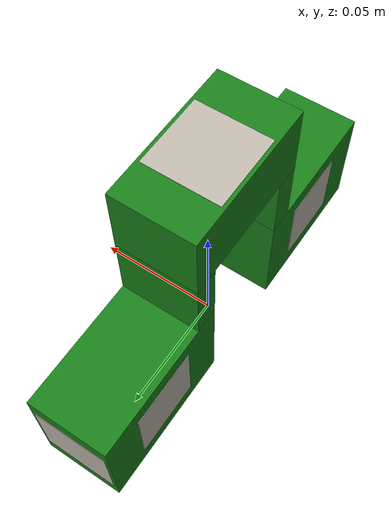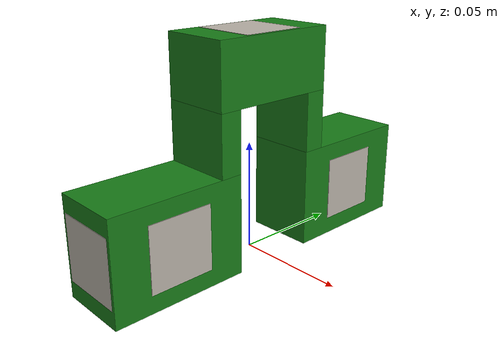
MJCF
<mujoco model="peg_v1_4">
  <compiler angle="radian" autolimits="true" inertiafromgeom="true" meshdir="../board_1" texturedir="tags" />
  <default>
    <default class="peg_v1_4">
      <default class="vis">
        <geom contype="0" conaffinity="0" group="2" density="0" material="peg_v1_4_mat" />
      </default>
      <default class="col">
        <geom contype="1" conaffinity="1" group="3" priority="0" friction="0.3 0.02 0.001" solref="0.002 1" solimp="0.995 0.995 0.0001" condim="6" rgba="0.1 0.5 0.1 0.5" />
      </default>
    </default>
  </default>
  <asset>
    <material name="peg_v1_4_mat" rgba="0.1 0.5 0.1 1.0" />
    <texture name="peg_4_1_tag_38_tex" type="2d" file="tag_38.png" />
    <material name="peg_4_1_tag_38_mat" texture="peg_4_1_tag_38_tex" rgba="1 1 1 1" specular="0" shininess="0" reflectance="0" emission="0" />
    <mesh name="peg_4_1_tag_38_mesh" vertex="-0.0146667 0.0146667 0 0.0146667 0.0146667 0 0.0146667 -0.0146667 0 -0.0146667 -0.0146667 0 -0.0146667 0.0146667 -0.0005 0.0146667 0.0146667 -0.0005 0.0146667 -0.0146667 -0.0005 -0.0146667 -0.0146667 -0.0005" texcoord="0 0 1 0 1 1 0 1 0 0 1 0 1 1 0 1" face="0 2 1 0 3 2 7 5 6 7 4 5 0 5 4 0 1 5 1 6 5 1 2 6 2 7 6 2 3 7 3 4 7 3 0 4" />
    <texture name="peg_4_1_tag_39_tex" type="2d" file="tag_39.png" />
    <material name="peg_4_1_tag_39_mat" texture="peg_4_1_tag_39_tex" rgba="1 1 1 1" specular="0" shininess="0" reflectance="0" emission="0" />
    <mesh name="peg_4_1_tag_39_mesh" vertex="-0.0146667 0.0146667 0 0.0146667 0.0146667 0 0.0146667 -0.0146667 0 -0.0146667 -0.0146667 0 -0.0146667 0.0146667 -0.0005 0.0146667 0.0146667 -0.0005 0.0146667 -0.0146667 -0.0005 -0.0146667 -0.0146667 -0.0005" texcoord="0 0 1 0 1 1 0 1 0 0 1 0 1 1 0 1" face="0 2 1 0 3 2 7 5 6 7 4 5 0 5 4 0 1 5 1 6 5 1 2 6 2 7 6 2 3 7 3 4 7 3 0 4" />
    <texture name="peg_4_1_tag_40_tex" type="2d" file="tag_40.png" />
    <material name="peg_4_1_tag_40_mat" texture="peg_4_1_tag_40_tex" rgba="1 1 1 1" specular="0" shininess="0" reflectance="0" emission="0" />
    <mesh name="peg_4_1_tag_40_mesh" vertex="-0.0146667 0.0146667 0 0.0146667 0.0146667 0 0.0146667 -0.0146667 0 -0.0146667 -0.0146667 0 -0.0146667 0.0146667 -0.0005 0.0146667 0.0146667 -0.0005 0.0146667 -0.0146667 -0.0005 -0.0146667 -0.0146667 -0.0005" texcoord="0 0 1 0 1 1 0 1 0 0 1 0 1 1 0 1" face="0 2 1 0 3 2 7 5 6 7 4 5 0 5 4 0 1 5 1 6 5 1 2 6 2 7 6 2 3 7 3 4 7 3 0 4" />
    <texture name="peg_4_1_tag_41_tex" type="2d" file="tag_41.png" />
    <material name="peg_4_1_tag_41_mat" texture="peg_4_1_tag_41_tex" rgba="1 1 1 1" specular="0" shininess="0" reflectance="0" emission="0" />
    <mesh name="peg_4_1_tag_41_mesh" vertex="-0.0146667 0.0146667 0 0.0146667 0.0146667 0 0.0146667 -0.0146667 0 -0.0146667 -0.0146667 0 -0.0146667 0.0146667 -0.0005 0.0146667 0.0146667 -0.0005 0.0146667 -0.0146667 -0.0005 -0.0146667 -0.0146667 -0.0005" texcoord="0 0 1 0 1 1 0 1 0 0 1 0 1 1 0 1" face="0 2 1 0 3 2 7 5 6 7 4 5 0 5 4 0 1 5 1 6 5 1 2 6 2 7 6 2 3 7 3 4 7 3 0 4" />
    <texture name="peg_4_1_tag_42_tex" type="2d" file="tag_42.png" />
    <material name="peg_4_1_tag_42_mat" texture="peg_4_1_tag_42_tex" rgba="1 1 1 1" specular="0" shininess="0" reflectance="0" emission="0" />
    <mesh name="peg_4_1_tag_42_mesh" vertex="-0.0146667 0.0146667 0 0.0146667 0.0146667 0 0.0146667 -0.0146667 0 -0.0146667 -0.0146667 0 -0.0146667 0.0146667 -0.0005 0.0146667 0.0146667 -0.0005 0.0146667 -0.0146667 -0.0005 -0.0146667 -0.0146667 -0.0005" texcoord="0 0 1 0 1 1 0 1 0 0 1 0 1 1 0 1" face="0 2 1 0 3 2 7 5 6 7 4 5 0 5 4 0 1 5 1 6 5 1 2 6 2 7 6 2 3 7 3 4 7 3 0 4" />
    <texture name="peg_4_1_tag_43_tex" type="2d" file="tag_43.png" />
    <material name="peg_4_1_tag_43_mat" texture="peg_4_1_tag_43_tex" rgba="1 1 1 1" specular="0" shininess="0" reflectance="0" emission="0" />
    <mesh name="peg_4_1_tag_43_mesh" vertex="-0.0146667 0.0146667 0 0.0146667 0.0146667 0 0.0146667 -0.0146667 0 -0.0146667 -0.0146667 0 -0.0146667 0.0146667 -0.0005 0.0146667 0.0146667 -0.0005 0.0146667 -0.0146667 -0.0005 -0.0146667 -0.0146667 -0.0005" texcoord="0 0 1 0 1 1 0 1 0 0 1 0 1 1 0 1" face="0 2 1 0 3 2 7 5 6 7 4 5 0 5 4 0 1 5 1 6 5 1 2 6 2 7 6 2 3 7 3 4 7 3 0 4" />
    <texture name="peg_4_1_tag_44_tex" type="2d" file="tag_44.png" />
    <material name="peg_4_1_tag_44_mat" texture="peg_4_1_tag_44_tex" rgba="1 1 1 1" specular="0" shininess="0" reflectance="0" emission="0" />
    <mesh name="peg_4_1_tag_44_mesh" vertex="-0.0146667 0.0146667 0 0.0146667 0.0146667 0 0.0146667 -0.0146667 0 -0.0146667 -0.0146667 0 -0.0146667 0.0146667 -0.0005 0.0146667 0.0146667 -0.0005 0.0146667 -0.0146667 -0.0005 -0.0146667 -0.0146667 -0.0005" texcoord="0 0 1 0 1 1 0 1 0 0 1 0 1 1 0 1" face="0 2 1 0 3 2 7 5 6 7 4 5 0 5 4 0 1 5 1 6 5 1 2 6 2 7 6 2 3 7 3 4 7 3 0 4" />
  </asset>
  <worldbody>
    <body name="peg_v1_4" pos="0 0 0" childclass="peg_v1_4">
      <freejoint name="peg_v1_4_joint" />
      <geom name="peg_v1_4_vis_foot_neg" type="box" class="vis" pos="0.000000 -0.050500 0.022500" size="0.016000 0.031000 0.022500" />
      <geom name="peg_v1_4_vis_foot_pos" type="box" class="vis" pos="0.000000 0.050500 0.022500" size="0.016000 0.031000 0.022500" />
      <geom name="peg_v1_4_vis_arch_neg" type="box" class="vis" pos="0.000000 -0.024500 0.058500" size="0.016000 0.005000 0.013500" />
      <geom name="peg_v1_4_vis_arch_pos" type="box" class="vis" pos="0.000000 0.024500 0.058500" size="0.016000 0.005000 0.013500" />
      <geom name="peg_v1_4_vis_top" type="box" class="vis" pos="0.000000 0.000000 0.086000" size="0.016000 0.029500 0.014000" />
      <geom name="peg_v1_4_col_foot_neg" type="box" class="col" pos="0.000000 -0.050500 0.022500" size="0.016000 0.031000 0.022500" />
      <geom name="peg_v1_4_col_foot_pos" type="box" class="col" pos="0.000000 0.050500 0.022500" size="0.016000 0.031000 0.022500" />
      <geom name="peg_v1_4_col_arch_neg" type="box" class="col" pos="0.000000 -0.024500 0.058500" size="0.016000 0.005000 0.013500" />
      <geom name="peg_v1_4_col_arch_pos" type="box" class="col" pos="0.000000 0.024500 0.058500" size="0.016000 0.005000 0.013500" />
      <geom name="peg_v1_4_col_top" type="box" class="col" pos="0.000000 0.000000 0.086000" size="0.016000 0.029500 0.014000" />
      <geom name="peg_4_1_tag_38" type="mesh" mesh="peg_4_1_tag_38_mesh" material="peg_4_1_tag_38_mat" pos="0 0 0.1002" quat="1 0 0 0" contype="0" conaffinity="0" group="2" density="0" />
      <geom name="peg_4_1_tag_39" type="mesh" mesh="peg_4_1_tag_39_mesh" material="peg_4_1_tag_39_mat" pos="0 -0.0817 0.0225" quat="0.707107 0.707107 0 0" contype="0" conaffinity="0" group="2" density="0" />
      <geom name="peg_4_1_tag_40" type="mesh" mesh="peg_4_1_tag_40_mesh" material="peg_4_1_tag_40_mat" pos="0 0.0817 0.0225" quat="0 0 0.707107 0.707107" contype="0" conaffinity="0" group="2" density="0" />
      <geom name="peg_4_1_tag_41" type="mesh" mesh="peg_4_1_tag_41_mesh" material="peg_4_1_tag_41_mat" pos="0.0162 -0.0505 0.0225" quat="0.5 0.5 0.5 0.5" contype="0" conaffinity="0" group="2" density="0" />
      <geom name="peg_4_1_tag_42" type="mesh" mesh="peg_4_1_tag_42_mesh" material="peg_4_1_tag_42_mat" pos="0.0162 0.0505 0.0225" quat="0.5 0.5 0.5 0.5" contype="0" conaffinity="0" group="2" density="0" />
      <geom name="peg_4_1_tag_43" type="mesh" mesh="peg_4_1_tag_43_mesh" material="peg_4_1_tag_43_mat" pos="-0.0162 -0.0505 0.0225" quat="0.5 0.5 -0.5 -0.5" contype="0" conaffinity="0" group="2" density="0" />
      <geom name="peg_4_1_tag_44" type="mesh" mesh="peg_4_1_tag_44_mesh" material="peg_4_1_tag_44_mat" pos="-0.0162 0.0505 0.0225" quat="0.5 0.5 -0.5 -0.5" contype="0" conaffinity="0" group="2" density="0" />
    </body>
  </worldbody>
</mujoco>
